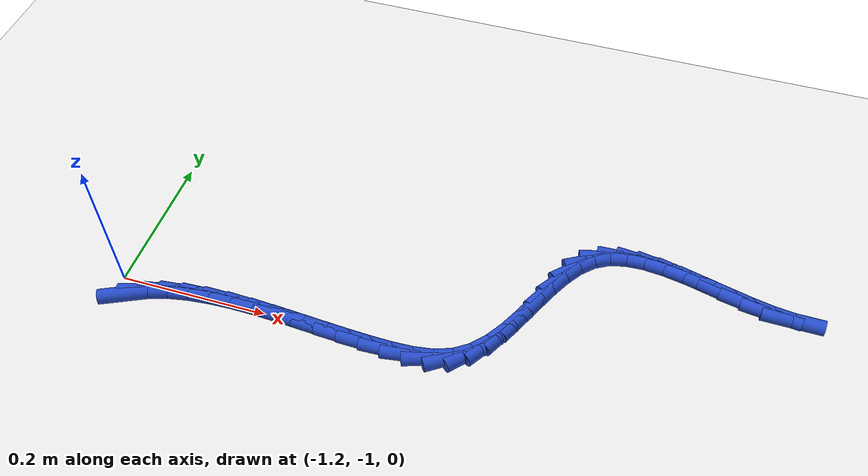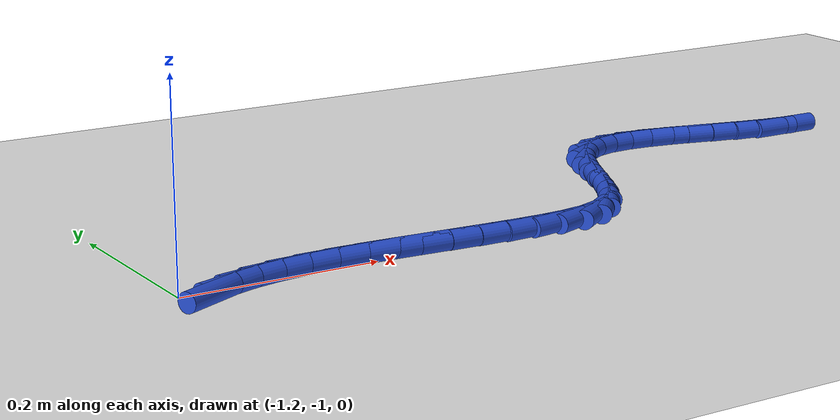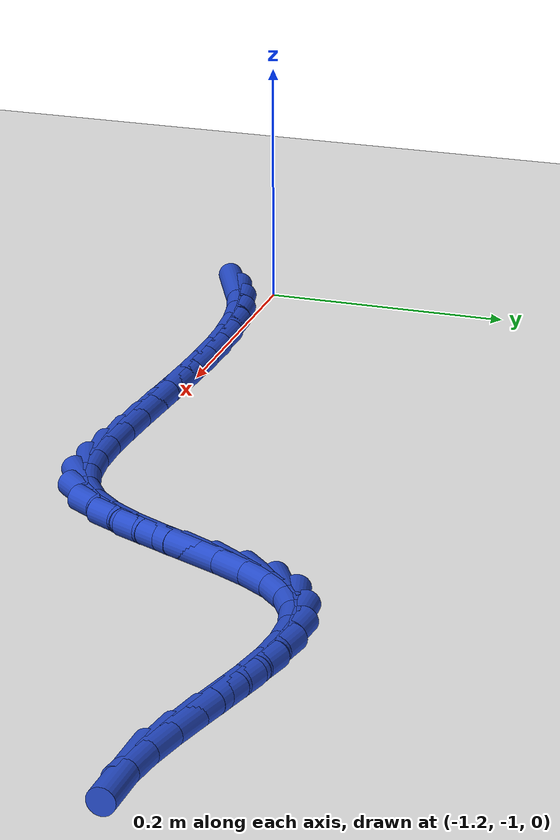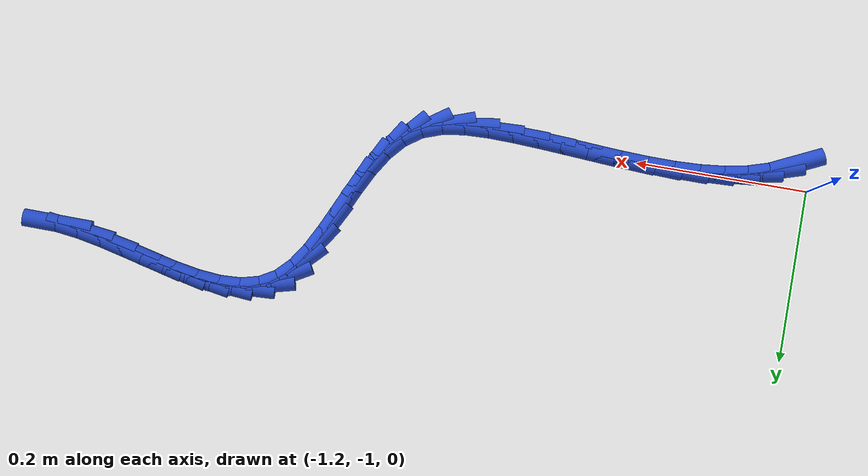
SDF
<sdf version="1.6">
 <world name="default">
  <model name="ground_plane">
   <static>1</static>
   <link name="link">
    <collision name="collision">
     <geometry><plane><normal>0 0 1</normal><size>100 100</size></plane></geometry>
     <surface><friction><ode><mu>100</mu><mu2>50</mu2></ode></friction></surface>
    </collision>
    <visual name="visual">
     <cast_shadows>0</cast_shadows>
     <geometry><plane><normal>0 0 1</normal><size>100 100</size></plane></geometry>
     <material>
      <script><uri>file://media/materials/scripts/gazebo.material</uri><name>Gazebo/WhiteGlow</name></script>
     </material>
    </visual>
   </link>
  </model>
  <model name="line">
   <link name="link_211">
    <pose>-1.17565669768001 -1.0262614915148776 0.01 0 1.57 0.4369643647202015</pose>
    <collision name="collision">
     <geometry><cylinder><radius>0.01</radius><length>0.08</length></cylinder></geometry>
    </collision>
    <visual name="visual">
     <material>
      <script><name>Gazebo/Blue</name><uri>file://media/materials/scripts/gazebo.material</uri></script>
     </material>
     <geometry><cylinder><radius>0.01</radius><length>0.08</length></cylinder></geometry>
    </visual>
   </link>
   <link name="link_212">
    <pose>-1.1533832114585545 -1.0158580501063144 0.01 0 1.57 0.29543869825877817</pose>
    <collision name="collision">
     <geometry><cylinder><radius>0.01</radius><length>0.08</length></cylinder></geometry>
    </collision>
    <visual name="visual">
     <material>
      <script><name>Gazebo/Blue</name><uri>file://media/materials/scripts/gazebo.material</uri></script>
     </material>
     <geometry><cylinder><radius>0.01</radius><length>0.08</length></cylinder></geometry>
    </visual>
   </link>
   <link name="link_213">
    <pose>-1.1287218674321031 -1.0083524812971212 0.01 0 1.57 0.18451122798998107</pose>
    <collision name="collision">
     <geometry><cylinder><radius>0.01</radius><length>0.08</length></cylinder></geometry>
    </collision>
    <visual name="visual">
     <material>
      <script><name>Gazebo/Blue</name><uri>file://media/materials/scripts/gazebo.material</uri></script>
     </material>
     <geometry><cylinder><radius>0.01</radius><length>0.08</length></cylinder></geometry>
    </visual>
   </link>
   <link name="link_214">
    <pose>-1.1020117544560672 -1.003367466134793 0.01 0 1.57 0.09966172525966162</pose>
    <collision name="collision">
     <geometry><cylinder><radius>0.01</radius><length>0.08</length></cylinder></geometry>
    </collision>
    <visual name="visual">
     <material>
      <script><name>Gazebo/Blue</name><uri>file://media/materials/scripts/gazebo.material</uri></script>
     </material>
     <geometry><cylinder><radius>0.01</radius><length>0.08</length></cylinder></geometry>
    </visual>
   </link>
   <link name="link_215">
    <pose>-1.0735919613858569 -1.000525685666825 0.01 0 1.57 0.036098807789829865</pose>
    <collision name="collision">
     <geometry><cylinder><radius>0.01</radius><length>0.08</length></cylinder></geometry>
    </collision>
    <visual name="visual">
     <material>
      <script><name>Gazebo/Blue</name><uri>file://media/materials/scripts/gazebo.material</uri></script>
     </material>
     <geometry><cylinder><radius>0.01</radius><length>0.08</length></cylinder></geometry>
    </visual>
   </link>
   <link name="link_216">
    <pose>-1.0438015770768834 -0.9994498209407116 0.01 0 1.57 -0.010146080124762768</pose>
    <collision name="collision">
     <geometry><cylinder><radius>0.01</radius><length>0.08</length></cylinder></geometry>
    </collision>
    <visual name="visual">
     <material>
      <script><name>Gazebo/Blue</name><uri>file://media/materials/scripts/gazebo.material</uri></script>
     </material>
     <geometry><cylinder><radius>0.01</radius><length>0.08</length></cylinder></geometry>
    </visual>
   </link>
   <link name="link_217">
    <pose>-1.012979690384556 -0.9997625530039481 0.01 0 1.57 -0.04198829469244626</pose>
    <collision name="collision">
     <geometry><cylinder><radius>0.01</radius><length>0.08</length></cylinder></geometry>
    </collision>
    <visual name="visual">
     <material>
      <script><name>Gazebo/Blue</name><uri>file://media/materials/scripts/gazebo.material</uri></script>
     </material>
     <geometry><cylinder><radius>0.01</radius><length>0.08</length></cylinder></geometry>
    </visual>
   </link>
   <link name="link_218">
    <pose>-0.9814653901642878 -1.0010865629040293 0.01 0 1.57 -0.06136355019536729</pose>
    <collision name="collision">
     <geometry><cylinder><radius>0.01</radius><length>0.08</length></cylinder></geometry>
    </collision>
    <visual name="visual">
     <material>
      <script><name>Gazebo/Blue</name><uri>file://media/materials/scripts/gazebo.material</uri></script>
     </material>
     <geometry><cylinder><radius>0.01</radius><length>0.08</length></cylinder></geometry>
    </visual>
   </link>
   <link name="link_219">
    <pose>-0.9495977652714878 -1.0030445316884498 0.01 0 1.57 -0.06935156975379375</pose>
    <collision name="collision">
     <geometry><cylinder><radius>0.01</radius><length>0.08</length></cylinder></geometry>
    </collision>
    <visual name="visual">
     <material>
      <script><name>Gazebo/Blue</name><uri>file://media/materials/scripts/gazebo.material</uri></script>
     </material>
     <geometry><cylinder><radius>0.01</radius><length>0.08</length></cylinder></geometry>
    </visual>
   </link>
   <link name="link_220">
    <pose>-0.9177159045615669 -1.0052591404047049 0.01 0 1.57 -0.06625674821046902</pose>
    <collision name="collision">
     <geometry><cylinder><radius>0.01</radius><length>0.08</length></cylinder></geometry>
    </collision>
    <visual name="visual">
     <material>
      <script><name>Gazebo/Blue</name><uri>file://media/materials/scripts/gazebo.material</uri></script>
     </material>
     <geometry><cylinder><radius>0.01</radius><length>0.08</length></cylinder></geometry>
    </visual>
   </link>
   <link name="link_221">
    <pose>-0.8861588968899365 -1.0073530701002895 0.01 0 1.57 -0.05161398654394993</pose>
    <collision name="collision">
     <geometry><cylinder><radius>0.01</radius><length>0.08</length></cylinder></geometry>
    </collision>
    <visual name="visual">
     <material>
      <script><name>Gazebo/Blue</name><uri>file://media/materials/scripts/gazebo.material</uri></script>
     </material>
     <geometry><cylinder><radius>0.01</radius><length>0.08</length></cylinder></geometry>
    </visual>
   </link>
   <link name="link_222">
    <pose>-0.8552658311120065 -1.0089490018226983 0.01 0 1.57 -0.023788751174486797</pose>
    <collision name="collision">
     <geometry><cylinder><radius>0.01</radius><length>0.08</length></cylinder></geometry>
    </collision>
    <visual name="visual">
     <material>
      <script><name>Gazebo/Blue</name><uri>file://media/materials/scripts/gazebo.material</uri></script>
     </material>
     <geometry><cylinder><radius>0.01</radius><length>0.08</length></cylinder></geometry>
    </visual>
   </link>
   <link name="link_223">
    <pose>-0.8253788508178663 -1.0096601099051312 0.01 0 1.57 0.03381853481097378</pose>
    <collision name="collision">
     <geometry><cylinder><radius>0.01</radius><length>0.08</length></cylinder></geometry>
    </collision>
    <visual name="visual">
     <material>
      <script><name>Gazebo/Blue</name><uri>file://media/materials/scripts/gazebo.material</uri></script>
     </material>
     <geometry><cylinder><radius>0.01</radius><length>0.08</length></cylinder></geometry>
    </visual>
   </link>
   <link name="link_224">
    <pose>-0.7969688253837844 -1.0086989580220782 0.01 0 1.57 0.14950792085897166</pose>
    <collision name="collision">
     <geometry><cylinder><radius>0.01</radius><length>0.08</length></cylinder></geometry>
    </collision>
    <visual name="visual">
     <material>
      <script><name>Gazebo/Blue</name><uri>file://media/materials/scripts/gazebo.material</uri></script>
     </material>
     <geometry><cylinder><radius>0.01</radius><length>0.08</length></cylinder></geometry>
    </visual>
   </link>
   <link name="link_225">
    <pose>-0.7706798533134536 -1.0047389992556301 0.01 0 1.57 0.34024042862441317</pose>
    <collision name="collision">
     <geometry><cylinder><radius>0.01</radius><length>0.08</length></cylinder></geometry>
    </collision>
    <visual name="visual">
     <material>
      <script><name>Gazebo/Blue</name><uri>file://media/materials/scripts/gazebo.material</uri></script>
     </material>
     <geometry><cylinder><radius>0.01</radius><length>0.08</length></cylinder></geometry>
    </visual>
   </link>
   <link name="link_226">
    <pose>-0.7471682352433279 -0.9964157121328994 0.01 0 1.57 0.6041194430571527</pose>
    <collision name="collision">
     <geometry><cylinder><radius>0.01</radius><length>0.08</length></cylinder></geometry>
    </collision>
    <visual name="visual">
     <material>
      <script><name>Gazebo/Blue</name><uri>file://media/materials/scripts/gazebo.material</uri></script>
     </material>
     <geometry><cylinder><radius>0.01</radius><length>0.08</length></cylinder></geometry>
    </visual>
   </link>
   <link name="link_227">
    <pose>-0.7270166780612393 -0.9825070780520009 0.01 0 1.57 0.8430741843569682</pose>
    <collision name="collision">
     <geometry><cylinder><radius>0.01</radius><length>0.08</length></cylinder></geometry>
    </collision>
    <visual name="visual">
     <material>
      <script><name>Gazebo/Blue</name><uri>file://media/materials/scripts/gazebo.material</uri></script>
     </material>
     <geometry><cylinder><radius>0.01</radius><length>0.08</length></cylinder></geometry>
    </visual>
   </link>
   <link name="link_228">
    <pose>-0.7099838290339419 -0.9633867419568163 0.01 0 1.57 1.0021013882092362</pose>
    <collision name="collision">
     <geometry><cylinder><radius>0.01</radius><length>0.08</length></cylinder></geometry>
    </collision>
    <visual name="visual">
     <material>
      <script><name>Gazebo/Blue</name><uri>file://media/materials/scripts/gazebo.material</uri></script>
     </material>
     <geometry><cylinder><radius>0.01</radius><length>0.08</length></cylinder></geometry>
    </visual>
   </link>
   <link name="link_229">
    <pose>-0.6953112544748797 -0.9404295957960664 0.01 0 1.57 1.095349472509363</pose>
    <collision name="collision">
     <geometry><cylinder><radius>0.01</radius><length>0.08</length></cylinder></geometry>
    </collision>
    <visual name="visual">
     <material>
      <script><name>Gazebo/Blue</name><uri>file://media/materials/scripts/gazebo.material</uri></script>
     </material>
     <geometry><cylinder><radius>0.01</radius><length>0.08</length></cylinder></geometry>
    </visual>
   </link>
   <link name="link_230">
    <pose>-0.6822325342667827 -0.9150259960018962 0.01 0 1.57 1.1371704549262076</pose>
    <collision name="collision">
     <geometry><cylinder><radius>0.01</radius><length>0.08</length></cylinder></geometry>
    </collision>
    <visual name="visual">
     <material>
      <script><name>Gazebo/Blue</name><uri>file://media/materials/scripts/gazebo.material</uri></script>
     </material>
     <geometry><cylinder><radius>0.01</radius><length>0.08</length></cylinder></geometry>
    </visual>
   </link>
   <link name="link_231">
    <pose>-0.6699812482923804 -0.8885662990064508 0.01 0 1.57 1.1342194306136264</pose>
    <collision name="collision">
     <geometry><cylinder><radius>0.01</radius><length>0.08</length></cylinder></geometry>
    </collision>
    <visual name="visual">
     <material>
      <script><name>Gazebo/Blue</name><uri>file://media/materials/scripts/gazebo.material</uri></script>
     </material>
     <geometry><cylinder><radius>0.01</radius><length>0.08</length></cylinder></geometry>
    </visual>
   </link>
   <link name="link_232">
    <pose>-0.6577909764344028 -0.8624408612418752 0.01 0 1.57 1.0846145429588472</pose>
    <collision name="collision">
     <geometry><cylinder><radius>0.01</radius><length>0.08</length></cylinder></geometry>
    </collision>
    <visual name="visual">
     <material>
      <script><name>Gazebo/Blue</name><uri>file://media/materials/scripts/gazebo.material</uri></script>
     </material>
     <geometry><cylinder><radius>0.01</radius><length>0.08</length></cylinder></geometry>
    </visual>
   </link>
   <link name="link_233">
    <pose>-0.6448952985755795 -0.8380400391403149 0.01 0 1.57 0.9770610151899419</pose>
    <collision name="collision">
     <geometry><cylinder><radius>0.01</radius><length>0.08</length></cylinder></geometry>
    </collision>
    <visual name="visual">
     <material>
      <script><name>Gazebo/Blue</name><uri>file://media/materials/scripts/gazebo.material</uri></script>
     </material>
     <geometry><cylinder><radius>0.01</radius><length>0.08</length></cylinder></geometry>
    </visual>
   </link>
   <link name="link_234">
    <pose>-0.6305277945986403 -0.8167541891339143 0.01 0 1.57 0.7906329398939019</pose>
    <collision name="collision">
     <geometry><cylinder><radius>0.01</radius><length>0.08</length></cylinder></geometry>
    </collision>
    <visual name="visual">
     <material>
      <script><name>Gazebo/Blue</name><uri>file://media/materials/scripts/gazebo.material</uri></script>
     </material>
     <geometry><cylinder><radius>0.01</radius><length>0.08</length></cylinder></geometry>
    </visual>
   </link>
   <link name="link_235">
    <pose>-0.6139220443863156 -0.7999736676548199 0.01 0 1.57 0.5160607167825516</pose>
    <collision name="collision">
     <geometry><cylinder><radius>0.01</radius><length>0.08</length></cylinder></geometry>
    </collision>
    <visual name="visual">
     <material>
      <script><name>Gazebo/Blue</name><uri>file://media/materials/scripts/gazebo.material</uri></script>
     </material>
     <geometry><cylinder><radius>0.01</radius><length>0.08</length></cylinder></geometry>
    </visual>
   </link>
   <link name="link_236">
    <pose>-0.5944102739735921 -0.7889038034850852 0.01 0 1.57 0.24671201858782002</pose>
    <collision name="collision">
     <geometry><cylinder><radius>0.01</radius><length>0.08</length></cylinder></geometry>
    </collision>
    <visual name="visual">
     <material>
      <script><name>Gazebo/Blue</name><uri>file://media/materials/scripts/gazebo.material</uri></script>
     </material>
     <geometry><cylinder><radius>0.01</radius><length>0.08</length></cylinder></geometry>
    </visual>
   </link>
   <link name="link_237">
    <pose>-0.5721049858141738 -0.7832863841649182 0.01 0 1.57 0.04541676307527358</pose>
    <collision name="collision">
     <geometry><cylinder><radius>0.01</radius><length>0.08</length></cylinder></geometry>
    </collision>
    <visual name="visual">
     <material>
      <script><name>Gazebo/Blue</name><uri>file://media/materials/scripts/gazebo.material</uri></script>
     </material>
     <geometry><cylinder><radius>0.01</radius><length>0.08</length></cylinder></geometry>
    </visual>
   </link>
   <link name="link_238">
    <pose>-0.5474895033589862 -0.782167659333145 0.01 0 1.57 -0.09134816515696628</pose>
    <collision name="collision">
     <geometry><cylinder><radius>0.01</radius><length>0.08</length></cylinder></geometry>
    </collision>
    <visual name="visual">
     <material>
      <script><name>Gazebo/Blue</name><uri>file://media/materials/scripts/gazebo.material</uri></script>
     </material>
     <geometry><cylinder><radius>0.01</radius><length>0.08</length></cylinder></geometry>
    </visual>
   </link>
   <link name="link_239">
    <pose>-0.521049402073305 -0.7845896545923385 0.01 0 1.57 -0.17824966472507842</pose>
    <collision name="collision">
     <geometry><cylinder><radius>0.01</radius><length>0.08</length></cylinder></geometry>
    </collision>
    <visual name="visual">
     <material>
      <script><name>Gazebo/Blue</name><uri>file://media/materials/scripts/gazebo.material</uri></script>
     </material>
     <geometry><cylinder><radius>0.01</radius><length>0.08</length></cylinder></geometry>
    </visual>
   </link>
   <link name="link_240">
    <pose>-0.4932702574224054 -0.7895943955450718 0.01 0 1.57 -0.227527775420212</pose>
    <collision name="collision">
     <geometry><cylinder><radius>0.01</radius><length>0.08</length></cylinder></geometry>
    </collision>
    <visual name="visual">
     <material>
      <script><name>Gazebo/Blue</name><uri>file://media/materials/scripts/gazebo.material</uri></script>
     </material>
     <geometry><cylinder><radius>0.01</radius><length>0.08</length></cylinder></geometry>
    </visual>
   </link>
   <link name="link_241">
    <pose>-0.46463764487156334 -0.7962239077939187 0.01 0 1.57 -0.2464769110574217</pose>
    <collision name="collision">
     <geometry><cylinder><radius>0.01</radius><length>0.08</length></cylinder></geometry>
    </collision>
    <visual name="visual">
     <material>
      <script><name>Gazebo/Blue</name><uri>file://media/materials/scripts/gazebo.material</uri></script>
     </material>
     <geometry><cylinder><radius>0.01</radius><length>0.08</length></cylinder></geometry>
    </visual>
   </link>
   <link name="link_242">
    <pose>-0.4356371398860545 -0.8035202169414521 0.01 0 1.57 -0.2379417256169395</pose>
    <collision name="collision">
     <geometry><cylinder><radius>0.01</radius><length>0.08</length></cylinder></geometry>
    </collision>
    <visual name="visual">
     <material>
      <script><name>Gazebo/Blue</name><uri>file://media/materials/scripts/gazebo.material</uri></script>
     </material>
     <geometry><cylinder><radius>0.01</radius><length>0.08</length></cylinder></geometry>
    </visual>
   </link>
   <link name="link_243">
    <pose>-0.40675431793115363 -0.8105253485902464 0.01 0 1.57 -0.20079563097353406</pose>
    <collision name="collision">
     <geometry><cylinder><radius>0.01</radius><length>0.08</length></cylinder></geometry>
    </collision>
    <visual name="visual">
     <material>
      <script><name>Gazebo/Blue</name><uri>file://media/materials/scripts/gazebo.material</uri></script>
     </material>
     <geometry><cylinder><radius>0.01</radius><length>0.08</length></cylinder></geometry>
    </visual>
   </link>
   <link name="link_244">
    <pose>-0.37847475447213796 -0.8162813283428733 0.01 0 1.57 -0.12978341509258595</pose>
    <collision name="collision">
     <geometry><cylinder><radius>0.01</radius><length>0.08</length></cylinder></geometry>
    </collision>
    <visual name="visual">
     <material>
      <script><name>Gazebo/Blue</name><uri>file://media/materials/scripts/gazebo.material</uri></script>
     </material>
     <geometry><cylinder><radius>0.01</radius><length>0.08</length></cylinder></geometry>
    </visual>
   </link>
   <link name="link_245">
    <pose>-0.3512840249742823 -0.8198301818019071 0.01 0 1.57 -0.01497967167082403</pose>
    <collision name="collision">
     <geometry><cylinder><radius>0.01</radius><length>0.08</length></cylinder></geometry>
    </collision>
    <visual name="visual">
     <material>
      <script><name>Gazebo/Blue</name><uri>file://media/materials/scripts/gazebo.material</uri></script>
     </material>
     <geometry><cylinder><radius>0.01</radius><length>0.08</length></cylinder></geometry>
    </visual>
   </link>
  </model>
 </world>
</sdf>
